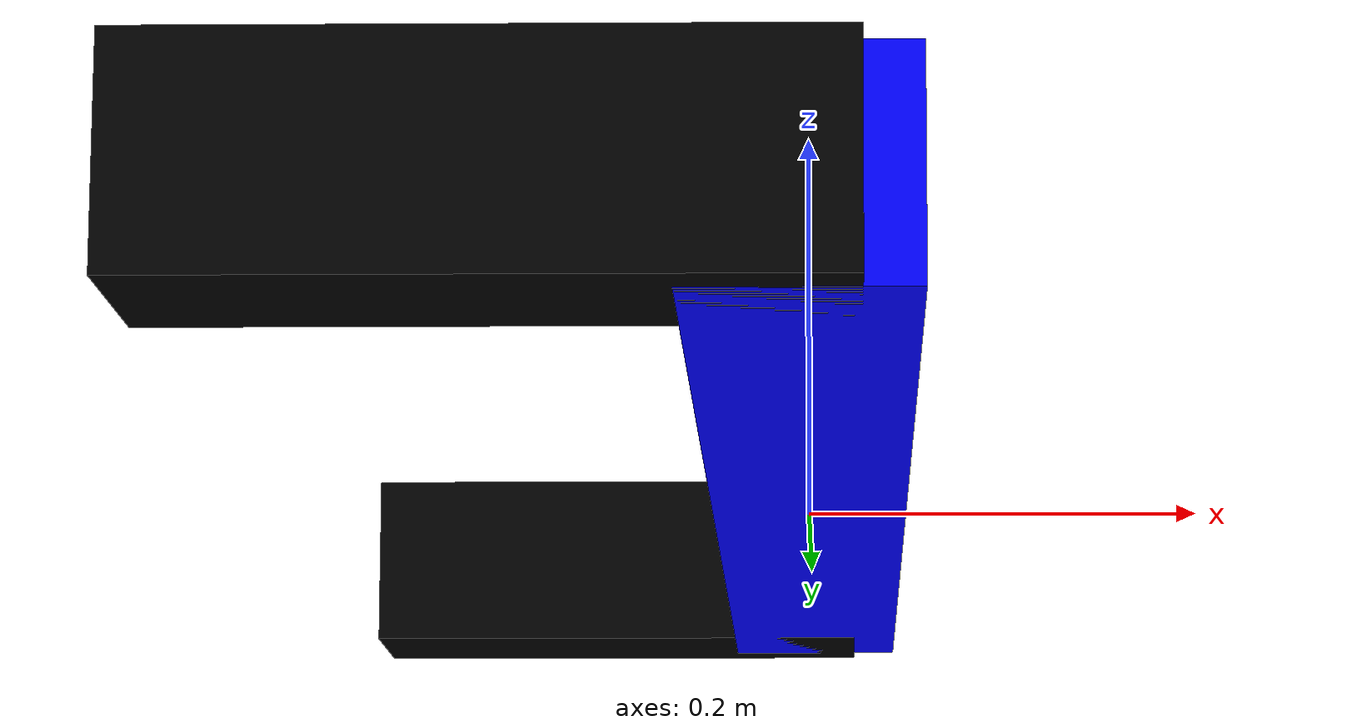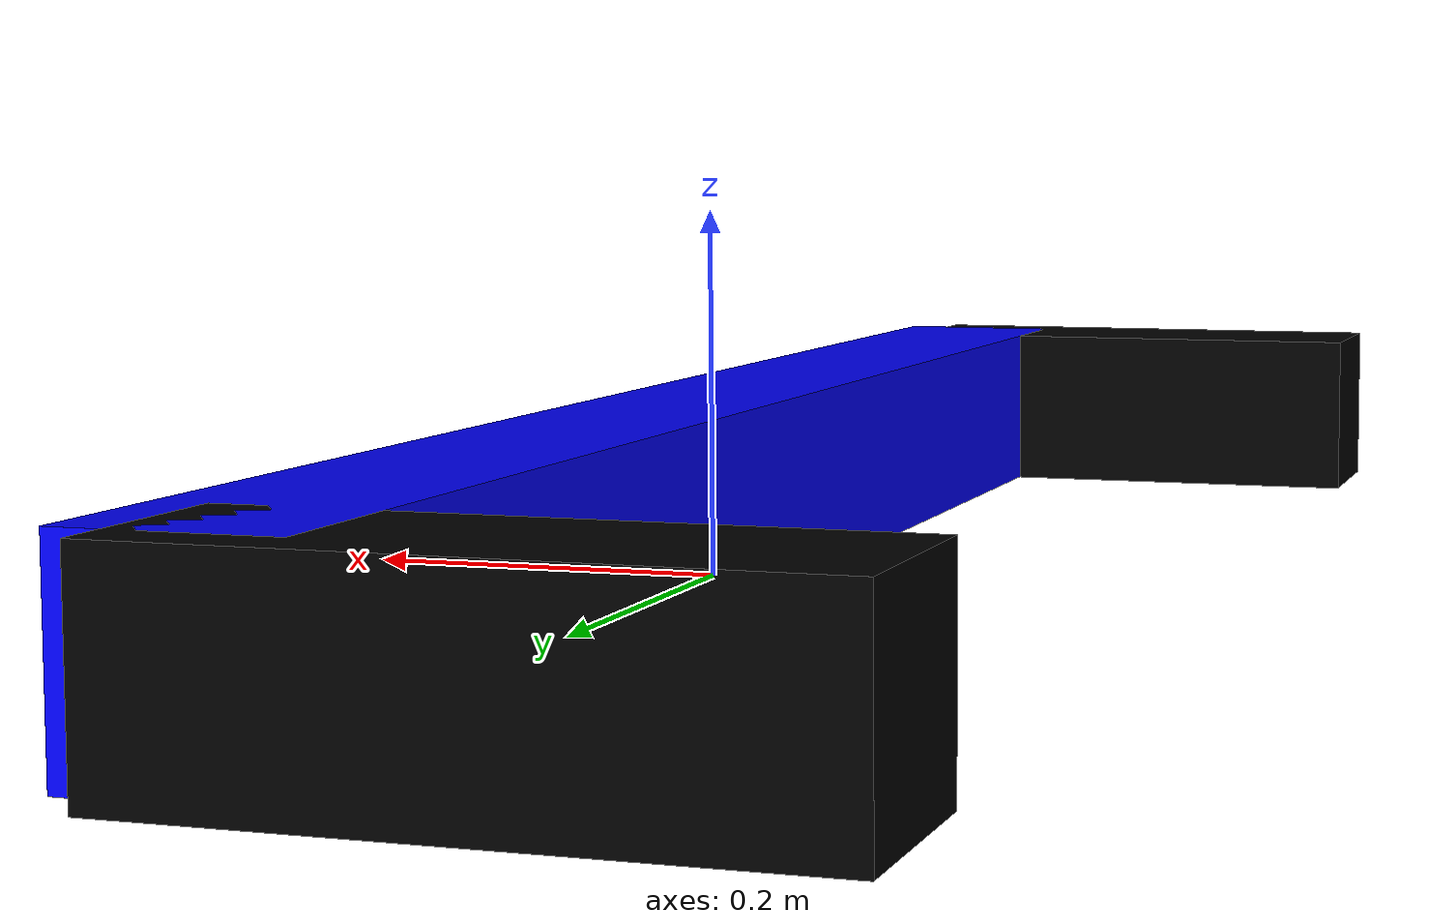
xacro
<?xml version="1.0"?>
<robot xmlns:xacro="http://www.ros.org/wiki/xacro" name="steering_linkage">

  <!-- Degree-to-radian conversions -->
  <xacro:property name="degrees_45" value="0.785398163"/>
  <xacro:property name="degrees_90" value="1.57079633"/>

  <!--Steering linkage properties -->
  <xacro:property name="steer_beam_L" value="0.10" />
  <xacro:property name="steer_beam_W" value="1.12" />
  <xacro:property name="steer_beam_H" value="0.10" />
  <xacro:property name="steer_beam_M" value="10" />

  <xacro:property name="steer_linkage_L" value="0.05" />
  <xacro:property name="steer_linkage_W" value="1.12" />
  <xacro:property name="steer_linkage_H" value="0.05" />
  <xacro:property name="steer_linkage_M" value="5" />

  <xacro:property name="control_arm_L" value="0.30" />
  <xacro:property name="control_arm_W" value="0.10" />
  <xacro:property name="control_arm_H" value="0.10" />
  <xacro:property name="control_arm_M" value="2" />

  <xacro:property name="joint_offset" value="0.025" />

  <!--Materials -->
  <material name="mat_1">
    <color rgba="0 0 1 1"/>
  </material>
  <material name="mat_2">
    <color rgba="0.5 0.5 0.5 1"/>
  </material>
  <material name="mat_3">
    <color rgba="0 0 0 1"/>
  </material>

  <!-- Macros -->

  <!-- Inertia of a solid cuboid. Width is measured along the x axis, depth
       along the y axis, and height along the z axis. -->
  <xacro:macro name="solid_cuboid_inertial"
               params="width depth height mass">
    <inertial>
      <mass value="${mass}"/>
      <origin/>
      <inertia ixx="${mass * (depth * depth + height * height) / 12}"
               ixy="0" ixz="0"
               iyy="${mass * (width * width + height * height) / 12}"
               iyz="0"
               izz="${mass * (width * width + depth * depth) / 12}"/>
    </inertial>
  </xacro:macro>

  <!-- Used for fixing robot to Gazebo 'base_link' -->
  <link name="world"/>

  <joint name="fixed" type="fixed">
    <parent link="world"/>
    <child link="steer_beam"/>
  </joint>

  <!-- steer_beam-->
    <link name="steer_beam">
      <visual>
        <origin xyz="0 0 ${steer_beam_H/2}" rpy="0 0 0" />
        <geometry>
          <box size="${steer_beam_L} ${steer_beam_W} ${steer_beam_H}"/>
        </geometry>
        <material name="mat_1"/>
      </visual>

      <collision>
        <origin xyz="0 0 ${steer_beam_H/2} " rpy="0 0 0" />
        <geometry>
          <box size="${steer_beam_L} ${steer_beam_W} ${steer_beam_H}"/>
        </geometry>
      </collision>

      <xacro:solid_cuboid_inertial
         width="${steer_beam_L}" depth="${steer_beam_W}"
         height="${steer_beam_H}" mass="${steer_beam_M}">
      </xacro:solid_cuboid_inertial>
    </link>

    <gazebo reference="steer_beam">
      <material>Gazebo/Blue</material>
    </gazebo>

  <!-- control_arm left -->
    <link name="control_arm_left">
      <visual>
        <origin xyz="${-control_arm_L/2 + joint_offset} 0 0 " rpy="0 0 0"/>
        <geometry>
          <box size="${control_arm_L} ${control_arm_W} ${control_arm_H}"/>
        </geometry>
        <material name="mat_3"/>
      </visual>

      <collision>
        <origin xyz="${-control_arm_L/2 + joint_offset} 0 0 " rpy="0 0 0"/>
        <geometry>
          <box size="${control_arm_L} ${control_arm_W} ${control_arm_H}"/>
        </geometry>
      </collision>

      <xacro:solid_cuboid_inertial
         width="${control_arm_L}" depth="${control_arm_W}"
         height="${control_arm_H}" mass="${control_arm_M}">
      </xacro:solid_cuboid_inertial>
    </link>

  <!-- control_arm right -->
    <link name="control_arm_right">
      <visual>
        <origin xyz="${-control_arm_L/2 + joint_offset} 0 0 " rpy="0 0 0"/>
        <geometry>
          <box size="${control_arm_L} ${control_arm_W} ${control_arm_H}"/>
        </geometry>
        <material name="mat_3"/>
      </visual>

      <collision>
        <origin xyz="${-control_arm_L/2 + joint_offset} 0 0 " rpy="0 0 0"/>
        <geometry>
          <box size="${control_arm_L} ${control_arm_W} ${control_arm_H}"/>
        </geometry>
      </collision>

      <xacro:solid_cuboid_inertial
         width="${control_arm_L}" depth="${control_arm_W}"
         height="${control_arm_H}" mass="${control_arm_M}">
      </xacro:solid_cuboid_inertial>
    </link>

  <!-- steer_beam to control_arm_left joint -->
    <joint name="steer_beam_to_left_control_arm_joint" type="revolute">
      <parent link="steer_beam"/>
      <child link="control_arm_left"/>
      <origin xyz="0 ${steer_beam_W/2 - joint_offset} ${steer_beam_H/2}" rpy="0 0 0"/>
      <axis xyz="0 0 -1"/>
      <limit effort="50" velocity="10"
             lower="${-degrees_45}" upper="${degrees_45}"/>
    </joint>

  <!-- steer_beam to control_arm_right joint -->
    <joint name="steer_beam_to_right_control_arm_joint" type="revolute">
      <parent link="steer_beam"/>
      <child link="control_arm_right"/>
      <origin xyz="0 ${-steer_beam_W/2 + joint_offset} ${steer_beam_H/2}" rpy="0 0 0"/>
      <axis xyz="0 0 -1"/>
      <limit effort="50" velocity="10"
             lower="${-degrees_45}" upper="${degrees_45}"/>
    </joint>

</robot>
